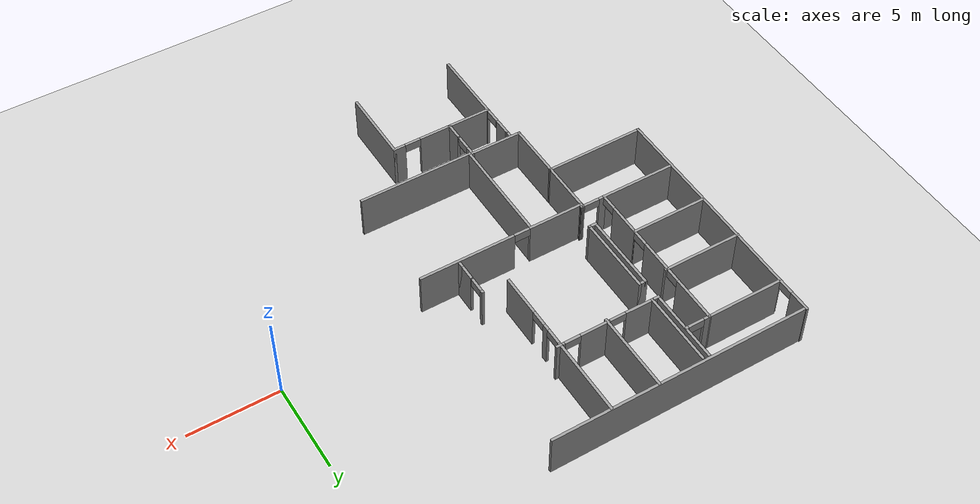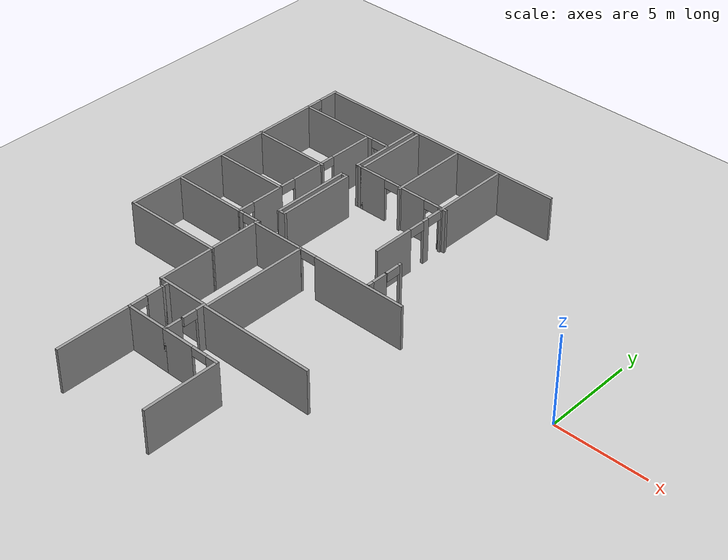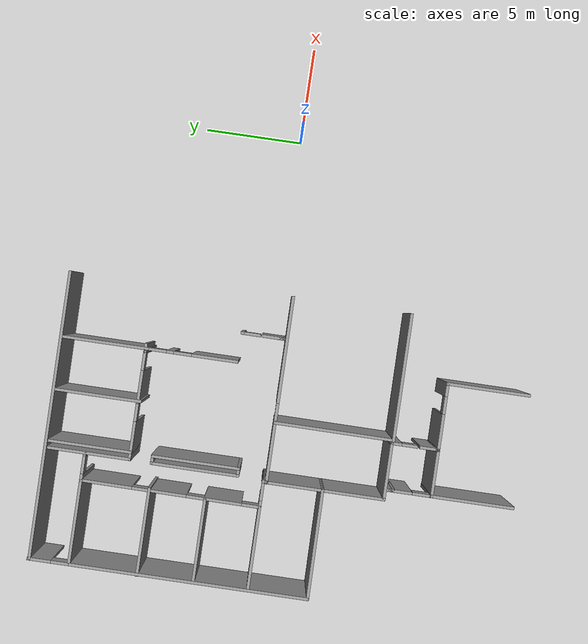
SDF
<sdf version="1.6">
 <world name="default">
  <model name="ground_plane">
   <static>1</static>
   <link name="link">
    <collision name="collision">
     <geometry><plane><normal>0 0 1</normal><size>100 100</size></plane></geometry>
     <surface><friction><ode><mu>100</mu><mu2>50</mu2></ode></friction></surface>
    </collision>
    <visual name="visual">
     <cast_shadows>0</cast_shadows>
     <geometry><plane><normal>0 0 1</normal><size>100 100</size></plane></geometry>
     <material>
      <script><uri>file://media/materials/scripts/gazebo.material</uri><name>Gazebo/Grey</name></script>
     </material>
    </visual>
   </link>
  </model>
  <model name="Devon1_test">
   <pose>0.002437 -1.27806 0 0 -0 0</pose>
   <link name="Wall_117">
    <pose>-13.0407 -7.76861 0 0 -0 0</pose>
    <visual name="Wall_117_Visual_0">
     <pose>-0.810078 0 1.25 0 -0 0</pose>
     <geometry><box><size>1.87984 0.15 2.5</size></box></geometry>
     <material>
      <script><uri>file://media/materials/scripts/gazebo.material</uri><name>Gazebo/Grey</name></script>
      <ambient>1 1 1 1</ambient>
     </material>
    </visual>
    <collision name="Wall_117_Collision_0">
     <geometry><box><size>1.87984 0.15 2.5</size></box></geometry>
     <pose>-0.810078 0 1.25 0 -0 0</pose>
    </collision>
    <visual name="Wall_117_Visual_1">
     <pose>1.38992 0 1.25 0 -0 0</pose>
     <geometry><box><size>0.720156 0.15 2.5</size></box></geometry>
     <material>
      <script><uri>file://media/materials/scripts/gazebo.material</uri><name>Gazebo/Grey</name></script>
      <ambient>1 1 1 1</ambient>
     </material>
    </visual>
    <collision name="Wall_117_Collision_1">
     <geometry><box><size>0.720156 0.15 2.5</size></box></geometry>
     <pose>1.38992 0 1.25 0 -0 0</pose>
    </collision>
    <visual name="Wall_117_Visual_2">
     <pose>0.579844 0 2.25 0 -0 0</pose>
     <geometry><box><size>0.9 0.15 0.5</size></box></geometry>
     <material>
      <script><uri>file://media/materials/scripts/gazebo.material</uri><name>Gazebo/Grey</name></script>
      <ambient>1 1 1 1</ambient>
     </material>
    </visual>
    <collision name="Wall_117_Collision_2">
     <geometry><box><size>0.9 0.15 0.5</size></box></geometry>
     <pose>0.579844 0 2.25 0 -0 0</pose>
    </collision>
   </link>
   <link name="Wall_118">
    <collision name="Wall_118_Collision">
     <geometry><box><size>4.25 0.15 2.5</size></box></geometry>
     <pose>0 0 1.25 0 -0 0</pose>
    </collision>
    <visual name="Wall_118_Visual">
     <pose>0 0 1.25 0 -0 0</pose>
     <geometry><box><size>4.25 0.15 2.5</size></box></geometry>
     <material>
      <script><uri>file://media/materials/scripts/gazebo.material</uri><name>Gazebo/Grey</name></script>
      <ambient>1 1 1 1</ambient>
     </material>
    </visual>
    <pose>-11.3657 -9.81861 0 0 0 -1.5708</pose>
   </link>
   <link name="Wall_200">
    <pose>-18.175 0.6819 0 0 -0 0</pose>
    <visual name="Wall_200_Visual_0">
     <pose>-0.55013 0 1.25 0 -0 0</pose>
     <geometry><box><size>0.399741 0.15 2.5</size></box></geometry>
     <material>
      <script><uri>file://media/materials/scripts/gazebo.material</uri><name>Gazebo/Grey</name></script>
      <ambient>1 1 1 1</ambient>
     </material>
    </visual>
    <collision name="Wall_200_Collision_0">
     <geometry><box><size>0.399741 0.15 2.5</size></box></geometry>
     <pose>-0.55013 0 1.25 0 -0 0</pose>
    </collision>
    <visual name="Wall_200_Visual_1">
     <pose>0.64987 0 1.25 0 -0 0</pose>
     <geometry><box><size>0.200259 0.15 2.5</size></box></geometry>
     <material>
      <script><uri>file://media/materials/scripts/gazebo.material</uri><name>Gazebo/Grey</name></script>
      <ambient>1 1 1 1</ambient>
     </material>
    </visual>
    <collision name="Wall_200_Collision_1">
     <geometry><box><size>0.200259 0.15 2.5</size></box></geometry>
     <pose>0.64987 0 1.25 0 -0 0</pose>
    </collision>
    <visual name="Wall_200_Visual_2">
     <pose>0.099741 0 2.25 0 -0 0</pose>
     <geometry><box><size>0.9 0.15 0.5</size></box></geometry>
     <material>
      <script><uri>file://media/materials/scripts/gazebo.material</uri><name>Gazebo/Grey</name></script>
      <ambient>1 1 1 1</ambient>
     </material>
    </visual>
    <collision name="Wall_200_Collision_2">
     <geometry><box><size>0.9 0.15 0.5</size></box></geometry>
     <pose>0.099741 0 2.25 0 -0 0</pose>
    </collision>
   </link>
   <link name="Wall_201">
    <collision name="Wall_201_Collision">
     <geometry><box><size>0.314212 0.15 2.5</size></box></geometry>
     <pose>0 0 1.25 0 -0 0</pose>
    </collision>
    <visual name="Wall_201_Visual">
     <pose>0 0 1.25 0 -0 0</pose>
     <geometry><box><size>0.314212 0.15 2.5</size></box></geometry>
     <material>
      <script><uri>file://media/materials/scripts/gazebo.material</uri><name>Gazebo/Grey</name></script>
      <ambient>1 1 1 1</ambient>
     </material>
    </visual>
    <pose>-17.5329 0.606647 0 0 0 -1.98224</pose>
   </link>
   <link name="Wall_209">
    <pose>-18.1237 9.74678 0 0 -0 0</pose>
    <visual name="Wall_209_Visual_0">
     <pose>-0.545999 0 1.25 0 -0 0</pose>
     <geometry><box><size>0.408002 0.15 2.5</size></box></geometry>
     <material>
      <script><uri>file://media/materials/scripts/gazebo.material</uri><name>Gazebo/Grey</name></script>
      <ambient>1 1 1 1</ambient>
     </material>
    </visual>
    <collision name="Wall_209_Collision_0">
     <geometry><box><size>0.408002 0.15 2.5</size></box></geometry>
     <pose>-0.545999 0 1.25 0 -0 0</pose>
    </collision>
    <visual name="Wall_209_Visual_1">
     <pose>0.654001 0 1.25 0 -0 0</pose>
     <geometry><box><size>0.191998 0.15 2.5</size></box></geometry>
     <material>
      <script><uri>file://media/materials/scripts/gazebo.material</uri><name>Gazebo/Grey</name></script>
      <ambient>1 1 1 1</ambient>
     </material>
    </visual>
    <collision name="Wall_209_Collision_1">
     <geometry><box><size>0.191998 0.15 2.5</size></box></geometry>
     <pose>0.654001 0 1.25 0 -0 0</pose>
    </collision>
    <visual name="Wall_209_Visual_2">
     <pose>0.108002 0 2.25 0 -0 0</pose>
     <geometry><box><size>0.9 0.15 0.5</size></box></geometry>
     <material>
      <script><uri>file://media/materials/scripts/gazebo.material</uri><name>Gazebo/Grey</name></script>
      <ambient>1 1 1 1</ambient>
     </material>
    </visual>
    <collision name="Wall_209_Collision_2">
     <geometry><box><size>0.9 0.15 0.5</size></box></geometry>
     <pose>0.108002 0 2.25 0 -0 0</pose>
    </collision>
   </link>
   <link name="Wall_29">
    <collision name="Wall_29_Collision">
     <geometry><box><size>14.6474 0.15 2.5</size></box></geometry>
     <pose>0 0 1.25 0 -0 0</pose>
    </collision>
    <visual name="Wall_29_Visual">
     <pose>0 0 1.25 0 -0 0</pose>
     <geometry><box><size>14.6474 0.15 2.5</size></box></geometry>
     <material>
      <script><uri>file://media/materials/scripts/gazebo.material</uri><name>Gazebo/Grey</name></script>
      <ambient>1 1 1 1</ambient>
     </material>
    </visual>
    <pose>-15.8144 11.7643 0 0 0 -3.13923</pose>
   </link>
   <link name="Wall_30">
    <pose>-23.0631 4.73139 0 0 0 -1.5708</pose>
    <visual name="Wall_30_Visual_0">
     <pose>-6.52269 0 1.25 0 -0 0</pose>
     <geometry><box><size>1.20461 0.15 2.5</size></box></geometry>
     <material>
      <script><uri>file://media/materials/scripts/gazebo.material</uri><name>Gazebo/Grey</name></script>
      <ambient>1 1 1 1</ambient>
     </material>
    </visual>
    <collision name="Wall_30_Collision_0">
     <geometry><box><size>1.20461 0.15 2.5</size></box></geometry>
     <pose>-6.52269 0 1.25 0 -0 0</pose>
    </collision>
    <visual name="Wall_30_Visual_1">
     <pose>1.05231 0 1.25 0 -0 0</pose>
     <geometry><box><size>12.1454 0.15 2.5</size></box></geometry>
     <material>
      <script><uri>file://media/materials/scripts/gazebo.material</uri><name>Gazebo/Grey</name></script>
      <ambient>1 1 1 1</ambient>
     </material>
    </visual>
    <collision name="Wall_30_Collision_1">
     <geometry><box><size>12.1454 0.15 2.5</size></box></geometry>
     <pose>1.05231 0 1.25 0 -0 0</pose>
    </collision>
    <visual name="Wall_30_Visual_2">
     <pose>-5.47039 0 2.25 0 -0 0</pose>
     <geometry><box><size>0.9 0.15 0.5</size></box></geometry>
     <material>
      <script><uri>file://media/materials/scripts/gazebo.material</uri><name>Gazebo/Grey</name></script>
      <ambient>1 1 1 1</ambient>
     </material>
    </visual>
    <collision name="Wall_30_Collision_2">
     <geometry><box><size>0.9 0.15 0.5</size></box></geometry>
     <pose>-5.47039 0 2.25 0 -0 0</pose>
    </collision>
   </link>
   <link name="Wall_31">
    <collision name="Wall_31_Collision">
     <geometry><box><size>5.64741 0.15 2.5</size></box></geometry>
     <pose>0 0 1.25 0 -0 0</pose>
    </collision>
    <visual name="Wall_31_Visual">
     <pose>0 0 1.25 0 -0 0</pose>
     <geometry><box><size>5.64741 0.15 2.5</size></box></geometry>
     <material>
      <script><uri>file://media/materials/scripts/gazebo.material</uri><name>Gazebo/Grey</name></script>
      <ambient>1 1 1 1</ambient>
     </material>
    </visual>
    <pose>-20.3144 -2.33571 0 0 -0 0.00622</pose>
   </link>
   <link name="Wall_32">
    <collision name="Wall_32_Collision">
     <geometry><box><size>3 0.15 2.5</size></box></geometry>
     <pose>0 0 1.25 0 -0 0</pose>
    </collision>
    <visual name="Wall_32_Visual">
     <pose>0 0 1.25 0 -0 0</pose>
     <geometry><box><size>3 0.15 2.5</size></box></geometry>
     <material>
      <script><uri>file://media/materials/scripts/gazebo.material</uri><name>Gazebo/Grey</name></script>
      <ambient>1 1 1 1</ambient>
     </material>
    </visual>
    <pose>-17.5657 -0.893607 0 0 -0 1.5708</pose>
   </link>
   <link name="Wall_33">
    <pose>-12.8907 0.531393 0 0 -0 0</pose>
    <visual name="Wall_33_Visual_0">
     <pose>-3.16154 0 1.25 0 -0 0</pose>
     <geometry><box><size>3.17692 0.15 2.5</size></box></geometry>
     <material>
      <script><uri>file://media/materials/scripts/gazebo.material</uri><name>Gazebo/Grey</name></script>
      <ambient>1 1 1 1</ambient>
     </material>
    </visual>
    <collision name="Wall_33_Collision_0">
     <geometry><box><size>3.17692 0.15 2.5</size></box></geometry>
     <pose>-3.16154 0 1.25 0 -0 0</pose>
    </collision>
    <visual name="Wall_33_Visual_1">
     <pose>2.03846 0 1.25 0 -0 0</pose>
     <geometry><box><size>5.42308 0.15 2.5</size></box></geometry>
     <material>
      <script><uri>file://media/materials/scripts/gazebo.material</uri><name>Gazebo/Grey</name></script>
      <ambient>1 1 1 1</ambient>
     </material>
    </visual>
    <collision name="Wall_33_Collision_1">
     <geometry><box><size>5.42308 0.15 2.5</size></box></geometry>
     <pose>2.03846 0 1.25 0 -0 0</pose>
    </collision>
    <visual name="Wall_33_Visual_2">
     <pose>-1.12308 0 2.25 0 -0 0</pose>
     <geometry><box><size>0.9 0.15 0.5</size></box></geometry>
     <material>
      <script><uri>file://media/materials/scripts/gazebo.material</uri><name>Gazebo/Grey</name></script>
      <ambient>1 1 1 1</ambient>
     </material>
    </visual>
    <collision name="Wall_33_Collision_2">
     <geometry><box><size>0.9 0.15 0.5</size></box></geometry>
     <pose>-1.12308 0 2.25 0 -0 0</pose>
    </collision>
   </link>
   <link name="Wall_35">
    <collision name="Wall_35_Collision">
     <geometry><box><size>6.5 0.15 2.5</size></box></geometry>
     <pose>0 0 1.25 0 -0 0</pose>
    </collision>
    <visual name="Wall_35_Visual">
     <pose>0 0 1.25 0 -0 0</pose>
     <geometry><box><size>6.5 0.15 2.5</size></box></geometry>
     <material>
      <script><uri>file://media/materials/scripts/gazebo.material</uri><name>Gazebo/Grey</name></script>
      <ambient>1 1 1 1</ambient>
     </material>
    </visual>
    <pose>-11.3907 -5.47431 0 0 -0 3.14159</pose>
   </link>
   <link name="Wall_36">
    <collision name="Wall_36_Collision">
     <geometry><box><size>6.13332 0.15 2.5</size></box></geometry>
     <pose>0 0 1.25 0 -0 0</pose>
    </collision>
    <visual name="Wall_36_Visual">
     <pose>0 0 1.25 0 -0 0</pose>
     <geometry><box><size>6.13332 0.15 2.5</size></box></geometry>
     <material>
      <script><uri>file://media/materials/scripts/gazebo.material</uri><name>Gazebo/Grey</name></script>
      <ambient>1 1 1 1</ambient>
     </material>
    </visual>
    <pose>-14.5552 -2.46171 0 0 -0 1.56729</pose>
   </link>
   <link name="Wall_49">
    <collision name="Wall_49_Collision">
     <geometry><box><size>4.25 0.15 2.5</size></box></geometry>
     <pose>0 0 1.25 0 -0 0</pose>
    </collision>
    <visual name="Wall_49_Visual">
     <pose>0 0 1.25 0 -0 0</pose>
     <geometry><box><size>4.25 0.15 2.5</size></box></geometry>
     <material>
      <script><uri>file://media/materials/scripts/gazebo.material</uri><name>Gazebo/Grey</name></script>
      <ambient>1 1 1 1</ambient>
     </material>
    </visual>
    <pose>-20.9 0.6819 0 0 -0 0</pose>
   </link>
   <link name="Wall_50">
    <pose>-18.8244 5.21434 0 0 -0 1.56514</pose>
    <visual name="Wall_50_Visual_0">
     <pose>-4.55656 0 1.25 0 -0 0</pose>
     <geometry><box><size>0.101914 0.15 2.5</size></box></geometry>
     <material>
      <script><uri>file://media/materials/scripts/gazebo.material</uri><name>Gazebo/Grey</name></script>
      <ambient>1 1 1 1</ambient>
     </material>
    </visual>
    <collision name="Wall_50_Collision_0">
     <geometry><box><size>0.101914 0.15 2.5</size></box></geometry>
     <pose>-4.55656 0 1.25 0 -0 0</pose>
    </collision>
    <visual name="Wall_50_Visual_1">
     <pose>-2.65892 0 1.25 0 -0 0</pose>
     <geometry><box><size>1.89335 0.15 2.5</size></box></geometry>
     <material>
      <script><uri>file://media/materials/scripts/gazebo.material</uri><name>Gazebo/Grey</name></script>
      <ambient>1 1 1 1</ambient>
     </material>
    </visual>
    <collision name="Wall_50_Collision_1">
     <geometry><box><size>1.89335 0.15 2.5</size></box></geometry>
     <pose>-2.65892 0 1.25 0 -0 0</pose>
    </collision>
    <visual name="Wall_50_Visual_2">
     <pose>0.1174 0 1.25 0 -0 0</pose>
     <geometry><box><size>1.85929 0.15 2.5</size></box></geometry>
     <material>
      <script><uri>file://media/materials/scripts/gazebo.material</uri><name>Gazebo/Grey</name></script>
      <ambient>1 1 1 1</ambient>
     </material>
    </visual>
    <collision name="Wall_50_Collision_2">
     <geometry><box><size>1.85929 0.15 2.5</size></box></geometry>
     <pose>0.1174 0 1.25 0 -0 0</pose>
    </collision>
    <visual name="Wall_50_Visual_3">
     <pose>3.27728 0 1.25 0 -0 0</pose>
     <geometry><box><size>2.66047 0.15 2.5</size></box></geometry>
     <material>
      <script><uri>file://media/materials/scripts/gazebo.material</uri><name>Gazebo/Grey</name></script>
      <ambient>1 1 1 1</ambient>
     </material>
    </visual>
    <collision name="Wall_50_Collision_3">
     <geometry><box><size>2.66047 0.15 2.5</size></box></geometry>
     <pose>3.27728 0 1.25 0 -0 0</pose>
    </collision>
    <visual name="Wall_50_Visual_4">
     <pose>-4.0556 0 2.25 0 -0 0</pose>
     <geometry><box><size>0.9 0.15 0.5</size></box></geometry>
     <material>
      <script><uri>file://media/materials/scripts/gazebo.material</uri><name>Gazebo/Grey</name></script>
      <ambient>1 1 1 1</ambient>
     </material>
    </visual>
    <collision name="Wall_50_Collision_4">
     <geometry><box><size>0.9 0.15 0.5</size></box></geometry>
     <pose>-4.0556 0 2.25 0 -0 0</pose>
    </collision>
    <visual name="Wall_50_Visual_5">
     <pose>-1.26225 0 2.25 0 -0 0</pose>
     <geometry><box><size>0.9 0.15 0.5</size></box></geometry>
     <material>
      <script><uri>file://media/materials/scripts/gazebo.material</uri><name>Gazebo/Grey</name></script>
      <ambient>1 1 1 1</ambient>
     </material>
    </visual>
    <collision name="Wall_50_Collision_5">
     <geometry><box><size>0.9 0.15 0.5</size></box></geometry>
     <pose>-1.26225 0 2.25 0 -0 0</pose>
    </collision>
    <visual name="Wall_50_Visual_6">
     <pose>1.49704 0 2.25 0 -0 0</pose>
     <geometry><box><size>0.9 0.15 0.5</size></box></geometry>
     <material>
      <script><uri>file://media/materials/scripts/gazebo.material</uri><name>Gazebo/Grey</name></script>
      <ambient>1 1 1 1</ambient>
     </material>
    </visual>
    <collision name="Wall_50_Collision_6">
     <geometry><box><size>0.9 0.15 0.5</size></box></geometry>
     <pose>1.49704 0 2.25 0 -0 0</pose>
    </collision>
   </link>
   <link name="Wall_51">
    <collision name="Wall_51_Collision">
     <geometry><box><size>4.25 0.15 2.5</size></box></geometry>
     <pose>0 0 1.25 0 -0 0</pose>
    </collision>
    <visual name="Wall_51_Visual">
     <pose>0 0 1.25 0 -0 0</pose>
     <geometry><box><size>4.25 0.15 2.5</size></box></geometry>
     <material>
      <script><uri>file://media/materials/scripts/gazebo.material</uri><name>Gazebo/Grey</name></script>
      <ambient>1 1 1 1</ambient>
     </material>
    </visual>
    <pose>-20.8889 9.74678 0 0 -0 3.14159</pose>
   </link>
   <link name="Wall_53">
    <collision name="Wall_53_Collision">
     <geometry><box><size>4.5 0.15 2.5</size></box></geometry>
     <pose>0 0 1.25 0 -0 0</pose>
    </collision>
    <visual name="Wall_53_Visual">
     <pose>0 0 1.25 0 -0 0</pose>
     <geometry><box><size>4.5 0.15 2.5</size></box></geometry>
     <material>
      <script><uri>file://media/materials/scripts/gazebo.material</uri><name>Gazebo/Grey</name></script>
      <ambient>1 1 1 1</ambient>
     </material>
    </visual>
    <pose>-20.9118 6.29016 0 0 -0 0</pose>
   </link>
   <link name="Wall_55">
    <collision name="Wall_55_Collision">
     <geometry><box><size>4.25 0.15 2.5</size></box></geometry>
     <pose>0 0 1.25 0 -0 0</pose>
    </collision>
    <visual name="Wall_55_Visual">
     <pose>0 0 1.25 0 -0 0</pose>
     <geometry><box><size>4.25 0.15 2.5</size></box></geometry>
     <material>
      <script><uri>file://media/materials/scripts/gazebo.material</uri><name>Gazebo/Grey</name></script>
      <ambient>1 1 1 1</ambient>
     </material>
    </visual>
    <pose>-20.9342 3.45183 0 0 -0 0</pose>
   </link>
   <link name="Wall_57">
    <collision name="Wall_57_Collision">
     <geometry><box><size>4.25 0.15 2.5</size></box></geometry>
     <pose>0 0 1.25 0 -0 0</pose>
    </collision>
    <visual name="Wall_57_Visual">
     <pose>0 0 1.25 0 -0 0</pose>
     <geometry><box><size>4.25 0.15 2.5</size></box></geometry>
     <material>
      <script><uri>file://media/materials/scripts/gazebo.material</uri><name>Gazebo/Grey</name></script>
      <ambient>1 1 1 1</ambient>
     </material>
    </visual>
    <pose>-17.4101 9.54066 0 0 0 -1.5708</pose>
   </link>
   <link name="Wall_58">
    <collision name="Wall_58_Collision">
     <geometry><box><size>0.5 0.15 2.5</size></box></geometry>
     <pose>0 0 1.25 0 -0 0</pose>
    </collision>
    <visual name="Wall_58_Visual">
     <pose>0 0 1.25 0 -0 0</pose>
     <geometry><box><size>0.5 0.15 2.5</size></box></geometry>
     <material>
      <script><uri>file://media/materials/scripts/gazebo.material</uri><name>Gazebo/Grey</name></script>
      <ambient>1 1 1 1</ambient>
     </material>
    </visual>
    <pose>-17.2351 7.49066 0 0 -0 0</pose>
   </link>
   <link name="Wall_59">
    <collision name="Wall_59_Collision">
     <geometry><box><size>4.25 0.15 2.5</size></box></geometry>
     <pose>0 0 1.25 0 -0 0</pose>
    </collision>
    <visual name="Wall_59_Visual">
     <pose>0 0 1.25 0 -0 0</pose>
     <geometry><box><size>4.25 0.15 2.5</size></box></geometry>
     <material>
      <script><uri>file://media/materials/scripts/gazebo.material</uri><name>Gazebo/Grey</name></script>
      <ambient>1 1 1 1</ambient>
     </material>
    </visual>
    <pose>-17.0601 9.54066 0 0 -0 1.5708</pose>
   </link>
   <link name="Wall_61">
    <collision name="Wall_61_Collision">
     <geometry><box><size>4.5 0.15 2.5</size></box></geometry>
     <pose>0 0 1.25 0 -0 0</pose>
    </collision>
    <visual name="Wall_61_Visual">
     <pose>0 0 1.25 0 -0 0</pose>
     <geometry><box><size>4.5 0.15 2.5</size></box></geometry>
     <material>
      <script><uri>file://media/materials/scripts/gazebo.material</uri><name>Gazebo/Grey</name></script>
      <ambient>1 1 1 1</ambient>
     </material>
    </visual>
    <pose>-14.4692 9.55244 0 0 0 -1.5708</pose>
   </link>
   <link name="Wall_63">
    <pose>-11.8019 7.30244 0 0 0 -1.5708</pose>
    <visual name="Wall_63_Visual_0">
     <pose>-2.25953 0 1.25 0 -0 0</pose>
     <geometry><box><size>4.48093 0.15 2.5</size></box></geometry>
     <material>
      <script><uri>file://media/materials/scripts/gazebo.material</uri><name>Gazebo/Grey</name></script>
      <ambient>1 1 1 1</ambient>
     </material>
    </visual>
    <collision name="Wall_63_Collision_0">
     <geometry><box><size>4.48093 0.15 2.5</size></box></geometry>
     <pose>-2.25953 0 1.25 0 -0 0</pose>
    </collision>
    <visual name="Wall_63_Visual_1">
     <pose>1.06357 0 1.25 0 -0 0</pose>
     <geometry><box><size>0.365279 0.15 2.5</size></box></geometry>
     <material>
      <script><uri>file://media/materials/scripts/gazebo.material</uri><name>Gazebo/Grey</name></script>
      <ambient>1 1 1 1</ambient>
     </material>
    </visual>
    <collision name="Wall_63_Collision_1">
     <geometry><box><size>0.365279 0.15 2.5</size></box></geometry>
     <pose>1.06357 0 1.25 0 -0 0</pose>
    </collision>
    <visual name="Wall_63_Visual_2">
     <pose>3.32311 0 1.25 0 -0 0</pose>
     <geometry><box><size>2.35379 0.15 2.5</size></box></geometry>
     <material>
      <script><uri>file://media/materials/scripts/gazebo.material</uri><name>Gazebo/Grey</name></script>
      <ambient>1 1 1 1</ambient>
     </material>
    </visual>
    <collision name="Wall_63_Collision_2">
     <geometry><box><size>2.35379 0.15 2.5</size></box></geometry>
     <pose>3.32311 0 1.25 0 -0 0</pose>
    </collision>
    <visual name="Wall_63_Visual_3">
     <pose>0.430935 0 2.25 0 -0 0</pose>
     <geometry><box><size>0.9 0.15 0.5</size></box></geometry>
     <material>
      <script><uri>file://media/materials/scripts/gazebo.material</uri><name>Gazebo/Grey</name></script>
      <ambient>1 1 1 1</ambient>
     </material>
    </visual>
    <collision name="Wall_63_Collision_3">
     <geometry><box><size>0.9 0.15 0.5</size></box></geometry>
     <pose>0.430935 0 2.25 0 -0 0</pose>
    </collision>
    <visual name="Wall_63_Visual_4">
     <pose>1.69621 0 2.25 0 -0 0</pose>
     <geometry><box><size>0.9 0.15 0.5</size></box></geometry>
     <material>
      <script><uri>file://media/materials/scripts/gazebo.material</uri><name>Gazebo/Grey</name></script>
      <ambient>1 1 1 1</ambient>
     </material>
    </visual>
    <collision name="Wall_63_Collision_4">
     <geometry><box><size>0.9 0.15 0.5</size></box></geometry>
     <pose>1.69621 0 2.25 0 -0 0</pose>
    </collision>
   </link>
   <link name="Wall_68">
    <pose>-14.5101 7.49066 0 0 -0 0</pose>
    <visual name="Wall_68_Visual_0">
     <pose>-1.80771 0 1.25 0 -0 0</pose>
     <geometry><box><size>1.63457 0.15 2.5</size></box></geometry>
     <material>
      <script><uri>file://media/materials/scripts/gazebo.material</uri><name>Gazebo/Grey</name></script>
      <ambient>1 1 1 1</ambient>
     </material>
    </visual>
    <collision name="Wall_68_Collision_0">
     <geometry><box><size>1.63457 0.15 2.5</size></box></geometry>
     <pose>-1.80771 0 1.25 0 -0 0</pose>
    </collision>
    <visual name="Wall_68_Visual_1">
     <pose>0.754304 0 1.25 0 -0 0</pose>
     <geometry><box><size>1.68946 0.15 2.5</size></box></geometry>
     <material>
      <script><uri>file://media/materials/scripts/gazebo.material</uri><name>Gazebo/Grey</name></script>
      <ambient>1 1 1 1</ambient>
     </material>
    </visual>
    <collision name="Wall_68_Collision_1">
     <geometry><box><size>1.68946 0.15 2.5</size></box></geometry>
     <pose>0.754304 0 1.25 0 -0 0</pose>
    </collision>
    <visual name="Wall_68_Visual_2">
     <pose>2.56202 0 1.25 0 -0 0</pose>
     <geometry><box><size>0.125965 0.15 2.5</size></box></geometry>
     <material>
      <script><uri>file://media/materials/scripts/gazebo.material</uri><name>Gazebo/Grey</name></script>
      <ambient>1 1 1 1</ambient>
     </material>
    </visual>
    <collision name="Wall_68_Collision_2">
     <geometry><box><size>0.125965 0.15 2.5</size></box></geometry>
     <pose>2.56202 0 1.25 0 -0 0</pose>
    </collision>
    <visual name="Wall_68_Visual_3">
     <pose>-0.540426 0 2.25 0 -0 0</pose>
     <geometry><box><size>0.9 0.15 0.5</size></box></geometry>
     <material>
      <script><uri>file://media/materials/scripts/gazebo.material</uri><name>Gazebo/Grey</name></script>
      <ambient>1 1 1 1</ambient>
     </material>
    </visual>
    <collision name="Wall_68_Collision_3">
     <geometry><box><size>0.9 0.15 0.5</size></box></geometry>
     <pose>-0.540426 0 2.25 0 -0 0</pose>
    </collision>
    <visual name="Wall_68_Visual_4">
     <pose>2.04903 0 2.25 0 -0 0</pose>
     <geometry><box><size>0.9 0.15 0.5</size></box></geometry>
     <material>
      <script><uri>file://media/materials/scripts/gazebo.material</uri><name>Gazebo/Grey</name></script>
      <ambient>1 1 1 1</ambient>
     </material>
    </visual>
    <collision name="Wall_68_Collision_4">
     <geometry><box><size>0.9 0.15 0.5</size></box></geometry>
     <pose>2.04903 0 2.25 0 -0 0</pose>
    </collision>
   </link>
   <link name="Wall_69">
    <collision name="Wall_69_Collision">
     <geometry><box><size>0.5 0.15 2.5</size></box></geometry>
     <pose>0 0 1.25 0 -0 0</pose>
    </collision>
    <visual name="Wall_69_Visual">
     <pose>0 0 1.25 0 -0 0</pose>
     <geometry><box><size>0.5 0.15 2.5</size></box></geometry>
     <material>
      <script><uri>file://media/materials/scripts/gazebo.material</uri><name>Gazebo/Grey</name></script>
      <ambient>1 1 1 1</ambient>
     </material>
    </visual>
    <pose>-11.7851 7.49066 0 0 -0 0</pose>
   </link>
   <link name="Wall_71">
    <collision name="Wall_71_Collision">
     <geometry><box><size>0.5 0.15 2.5</size></box></geometry>
     <pose>0 0 1.25 0 -0 0</pose>
    </collision>
    <visual name="Wall_71_Visual">
     <pose>0 0 1.25 0 -0 0</pose>
     <geometry><box><size>0.5 0.15 2.5</size></box></geometry>
     <material>
      <script><uri>file://media/materials/scripts/gazebo.material</uri><name>Gazebo/Grey</name></script>
      <ambient>1 1 1 1</ambient>
     </material>
    </visual>
    <pose>-17.2693 6.35856 0 0 -0 0</pose>
   </link>
   <link name="Wall_72">
    <collision name="Wall_72_Collision">
     <geometry><box><size>4.5 0.15 2.5</size></box></geometry>
     <pose>0 0 1.25 0 -0 0</pose>
    </collision>
    <visual name="Wall_72_Visual">
     <pose>0 0 1.25 0 -0 0</pose>
     <geometry><box><size>4.5 0.15 2.5</size></box></geometry>
     <material>
      <script><uri>file://media/materials/scripts/gazebo.material</uri><name>Gazebo/Grey</name></script>
      <ambient>1 1 1 1</ambient>
     </material>
    </visual>
    <pose>-17.0943 4.18356 0 0 0 -1.5708</pose>
   </link>
   <link name="Wall_73">
    <collision name="Wall_73_Collision">
     <geometry><box><size>0.5 0.15 2.5</size></box></geometry>
     <pose>0 0 1.25 0 -0 0</pose>
    </collision>
    <visual name="Wall_73_Visual">
     <pose>0 0 1.25 0 -0 0</pose>
     <geometry><box><size>0.5 0.15 2.5</size></box></geometry>
     <material>
      <script><uri>file://media/materials/scripts/gazebo.material</uri><name>Gazebo/Grey</name></script>
      <ambient>1 1 1 1</ambient>
     </material>
    </visual>
    <pose>-17.2693 2.00856 0 0 -0 3.14159</pose>
   </link>
   <link name="Wall_74">
    <collision name="Wall_74_Collision">
     <geometry><box><size>4.5 0.15 2.5</size></box></geometry>
     <pose>0 0 1.25 0 -0 0</pose>
    </collision>
    <visual name="Wall_74_Visual">
     <pose>0 0 1.25 0 -0 0</pose>
     <geometry><box><size>4.5 0.15 2.5</size></box></geometry>
     <material>
      <script><uri>file://media/materials/scripts/gazebo.material</uri><name>Gazebo/Grey</name></script>
      <ambient>1 1 1 1</ambient>
     </material>
    </visual>
    <pose>-17.4443 4.18356 0 0 -0 1.5708</pose>
   </link>
   <link name="Wall_76">
    <pose>-10.3314 1.7521 0 0 0 -1.5708</pose>
    <visual name="Wall_76_Visual_0">
     <pose>-1.03893 0 1.25 0 -0 0</pose>
     <geometry><box><size>0.172148 0.15 2.5</size></box></geometry>
     <material>
      <script><uri>file://media/materials/scripts/gazebo.material</uri><name>Gazebo/Grey</name></script>
      <ambient>1 1 1 1</ambient>
     </material>
    </visual>
    <collision name="Wall_76_Collision_0">
     <geometry><box><size>0.172148 0.15 2.5</size></box></geometry>
     <pose>-1.03893 0 1.25 0 -0 0</pose>
    </collision>
    <visual name="Wall_76_Visual_1">
     <pose>0.536074 0 1.25 0 -0 0</pose>
     <geometry><box><size>1.17785 0.15 2.5</size></box></geometry>
     <material>
      <script><uri>file://media/materials/scripts/gazebo.material</uri><name>Gazebo/Grey</name></script>
      <ambient>1 1 1 1</ambient>
     </material>
    </visual>
    <collision name="Wall_76_Collision_1">
     <geometry><box><size>1.17785 0.15 2.5</size></box></geometry>
     <pose>0.536074 0 1.25 0 -0 0</pose>
    </collision>
    <visual name="Wall_76_Visual_2">
     <pose>0.959309 0 1.25 0 -0 0</pose>
     <geometry><box><size>0.331382 0.15 2.5</size></box></geometry>
     <material>
      <script><uri>file://media/materials/scripts/gazebo.material</uri><name>Gazebo/Grey</name></script>
      <ambient>1 1 1 1</ambient>
     </material>
    </visual>
    <collision name="Wall_76_Collision_2">
     <geometry><box><size>0.331382 0.15 2.5</size></box></geometry>
     <pose>0.959309 0 1.25 0 -0 0</pose>
    </collision>
    <visual name="Wall_76_Visual_3">
     <pose>-0.529617 0 2.25 0 -0 0</pose>
     <geometry><box><size>0.84647 0.15 0.5</size></box></geometry>
     <material>
      <script><uri>file://media/materials/scripts/gazebo.material</uri><name>Gazebo/Grey</name></script>
      <ambient>1 1 1 1</ambient>
     </material>
    </visual>
    <collision name="Wall_76_Collision_3">
     <geometry><box><size>0.84647 0.15 0.5</size></box></geometry>
     <pose>-0.529617 0 2.25 0 -0 0</pose>
    </collision>
   </link>
   <link name="Wall_78">
    <collision name="Wall_78_Collision">
     <geometry><box><size>3.25 0.15 2.5</size></box></geometry>
     <pose>0 0 1.25 0 -0 0</pose>
    </collision>
    <visual name="Wall_78_Visual">
     <pose>0 0 1.25 0 -0 0</pose>
     <geometry><box><size>3.25 0.15 2.5</size></box></geometry>
     <material>
      <script><uri>file://media/materials/scripts/gazebo.material</uri><name>Gazebo/Grey</name></script>
      <ambient>1 1 1 1</ambient>
     </material>
    </visual>
    <pose>-17.5657 -3.86861 0 0 0 -1.5708</pose>
   </link>
   <link name="Wall_79">
    <collision name="Wall_79_Collision">
     <geometry><box><size>3 0.15 2.5</size></box></geometry>
     <pose>0 0 1.25 0 -0 0</pose>
    </collision>
    <visual name="Wall_79_Visual">
     <pose>0 0 1.25 0 -0 0</pose>
     <geometry><box><size>3 0.15 2.5</size></box></geometry>
     <material>
      <script><uri>file://media/materials/scripts/gazebo.material</uri><name>Gazebo/Grey</name></script>
      <ambient>1 1 1 1</ambient>
     </material>
    </visual>
    <pose>-16.1407 -5.41861 0 0 -0 0</pose>
   </link>
   <link name="Wall_80">
    <pose>-14.7157 -6.59361 0 0 0 -1.5708</pose>
    <visual name="Wall_80_Visual_0">
     <pose>-0.960443 0 1.25 0 -0 0</pose>
     <geometry><box><size>0.579115 0.15 2.5</size></box></geometry>
     <material>
      <script><uri>file://media/materials/scripts/gazebo.material</uri><name>Gazebo/Grey</name></script>
      <ambient>1 1 1 1</ambient>
     </material>
    </visual>
    <collision name="Wall_80_Collision_0">
     <geometry><box><size>0.579115 0.15 2.5</size></box></geometry>
     <pose>-0.960443 0 1.25 0 -0 0</pose>
    </collision>
    <visual name="Wall_80_Visual_1">
     <pose>0.739557 0 1.25 0 -0 0</pose>
     <geometry><box><size>1.02089 0.15 2.5</size></box></geometry>
     <material>
      <script><uri>file://media/materials/scripts/gazebo.material</uri><name>Gazebo/Grey</name></script>
      <ambient>1 1 1 1</ambient>
     </material>
    </visual>
    <collision name="Wall_80_Collision_1">
     <geometry><box><size>1.02089 0.15 2.5</size></box></geometry>
     <pose>0.739557 0 1.25 0 -0 0</pose>
    </collision>
    <visual name="Wall_80_Visual_2">
     <pose>1.1391 0 1.25 0 -0 0</pose>
     <geometry><box><size>0.221801 0.15 2.5</size></box></geometry>
     <material>
      <script><uri>file://media/materials/scripts/gazebo.material</uri><name>Gazebo/Grey</name></script>
      <ambient>1 1 1 1</ambient>
     </material>
    </visual>
    <collision name="Wall_80_Collision_2">
     <geometry><box><size>0.221801 0.15 2.5</size></box></geometry>
     <pose>1.1391 0 1.25 0 -0 0</pose>
    </collision>
    <visual name="Wall_80_Visual_3">
     <pose>-0.271343 0 2.25 0 -0 0</pose>
     <geometry><box><size>0.799085 0.15 0.5</size></box></geometry>
     <material>
      <script><uri>file://media/materials/scripts/gazebo.material</uri><name>Gazebo/Grey</name></script>
      <ambient>1 1 1 1</ambient>
     </material>
    </visual>
    <collision name="Wall_80_Collision_3">
     <geometry><box><size>0.799085 0.15 0.5</size></box></geometry>
     <pose>-0.271343 0 2.25 0 -0 0</pose>
    </collision>
   </link>
   <link name="Wall_81">
    <collision name="Wall_81_Collision">
     <geometry><box><size>2.5 0.15 2.5</size></box></geometry>
     <pose>0 0 1.25 0 -0 0</pose>
    </collision>
    <visual name="Wall_81_Visual">
     <pose>0 0 1.25 0 -0 0</pose>
     <geometry><box><size>2.5 0.15 2.5</size></box></geometry>
     <material>
      <script><uri>file://media/materials/scripts/gazebo.material</uri><name>Gazebo/Grey</name></script>
      <ambient>1 1 1 1</ambient>
     </material>
    </visual>
    <pose>-15.8907 -7.76861 0 0 -0 3.14159</pose>
   </link>
   <link name="Wall_82">
    <pose>-17.0657 -6.71861 0 0 -0 1.5708</pose>
    <visual name="Wall_82_Visual_0">
     <pose>-1.0396 0 1.25 0 -0 0</pose>
     <geometry><box><size>0.170795 0.15 2.5</size></box></geometry>
     <material>
      <script><uri>file://media/materials/scripts/gazebo.material</uri><name>Gazebo/Grey</name></script>
      <ambient>1 1 1 1</ambient>
     </material>
    </visual>
    <collision name="Wall_82_Collision_0">
     <geometry><box><size>0.170795 0.15 2.5</size></box></geometry>
     <pose>-1.0396 0 1.25 0 -0 0</pose>
    </collision>
    <visual name="Wall_82_Visual_1">
     <pose>0.535398 0 1.25 0 -0 0</pose>
     <geometry><box><size>1.17921 0.15 2.5</size></box></geometry>
     <material>
      <script><uri>file://media/materials/scripts/gazebo.material</uri><name>Gazebo/Grey</name></script>
      <ambient>1 1 1 1</ambient>
     </material>
    </visual>
    <collision name="Wall_82_Collision_1">
     <geometry><box><size>1.17921 0.15 2.5</size></box></geometry>
     <pose>0.535398 0 1.25 0 -0 0</pose>
    </collision>
    <visual name="Wall_82_Visual_2">
     <pose>0.977445 0 1.25 0 -0 0</pose>
     <geometry><box><size>0.295111 0.15 2.5</size></box></geometry>
     <material>
      <script><uri>file://media/materials/scripts/gazebo.material</uri><name>Gazebo/Grey</name></script>
      <ambient>1 1 1 1</ambient>
     </material>
    </visual>
    <collision name="Wall_82_Collision_2">
     <geometry><box><size>0.295111 0.15 2.5</size></box></geometry>
     <pose>0.977445 0 1.25 0 -0 0</pose>
    </collision>
    <visual name="Wall_82_Visual_3">
     <pose>-0.512158 0 2.25 0 -0 0</pose>
     <geometry><box><size>0.884094 0.15 0.5</size></box></geometry>
     <material>
      <script><uri>file://media/materials/scripts/gazebo.material</uri><name>Gazebo/Grey</name></script>
      <ambient>1 1 1 1</ambient>
     </material>
    </visual>
    <collision name="Wall_82_Collision_3">
     <geometry><box><size>0.884094 0.15 0.5</size></box></geometry>
     <pose>-0.512158 0 2.25 0 -0 0</pose>
    </collision>
   </link>
   <link name="Wall_84">
    <collision name="Wall_84_Collision">
     <geometry><box><size>0.25 0.15 2.5</size></box></geometry>
     <pose>0 0 1.25 0 -0 0</pose>
    </collision>
    <visual name="Wall_84_Visual">
     <pose>0 0 1.25 0 -0 0</pose>
     <geometry><box><size>0.25 0.15 2.5</size></box></geometry>
     <material>
      <script><uri>file://media/materials/scripts/gazebo.material</uri><name>Gazebo/Grey</name></script>
      <ambient>1 1 1 1</ambient>
     </material>
    </visual>
    <pose>-17.0657 -5.61861 0 0 -0 1.5708</pose>
   </link>
   <link name="Wall_86">
    <collision name="Wall_86_Collision">
     <geometry><box><size>4.25 0.15 2.5</size></box></geometry>
     <pose>0 0 1.25 0 -0 0</pose>
    </collision>
    <visual name="Wall_86_Visual">
     <pose>0 0 1.25 0 -0 0</pose>
     <geometry><box><size>4.25 0.15 2.5</size></box></geometry>
     <material>
      <script><uri>file://media/materials/scripts/gazebo.material</uri><name>Gazebo/Grey</name></script>
      <ambient>1 1 1 1</ambient>
     </material>
    </visual>
    <pose>-17.0657 -9.81861 0 0 0 -1.5708</pose>
   </link>
   <static>1</static>
  </model>
 </world>
</sdf>
